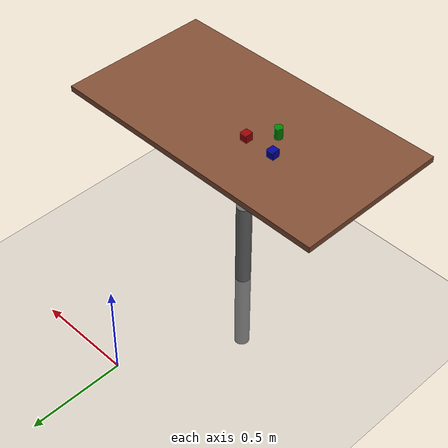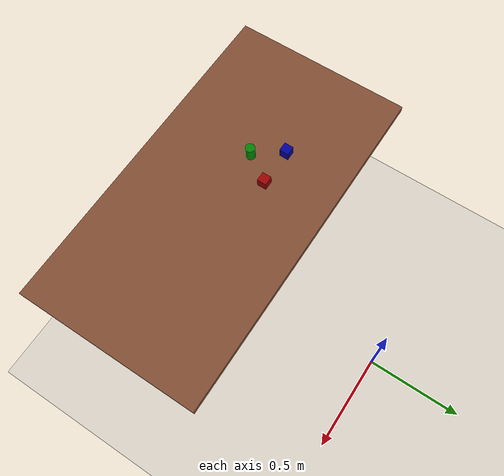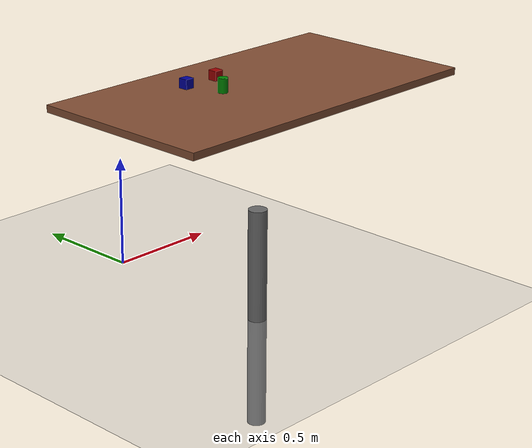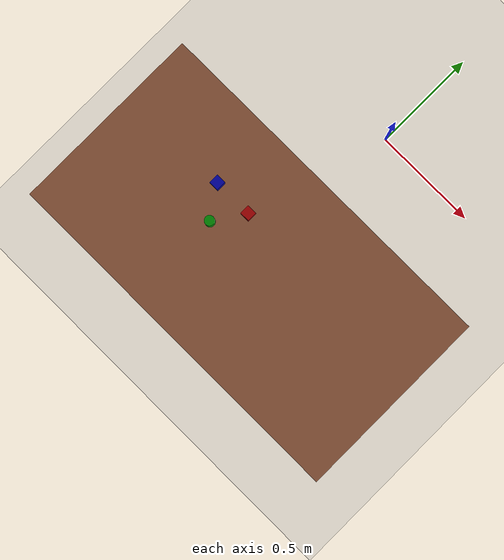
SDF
<?xml version='1.0' encoding='UTF-8'?>
<sdf version="1.6">
  <world name="default">

    <light type="directional" name="sun">
      <cast_shadows>true</cast_shadows>
      <pose>0 0 10 0 0 0</pose>
      <diffuse>0.8 0.8 0.8 1</diffuse>
      <specular>0.2 0.2 0.2 1</specular>
      <direction>-0.5 0.1 -0.9</direction>
    </light>

    <model name="ground_plane">
      <static>true</static>
      <link name="link">
        <collision name="collision">
          <geometry><plane><normal>0 0 1</normal><size>100 100</size></plane></geometry>
          <surface><friction><ode><mu>0.5</mu><mu2>0.5</mu2></ode></friction></surface>
        </collision>
        <visual name="visual">
          <geometry><plane><normal>0 0 1</normal><size>100 100</size></plane></geometry>
          <material><ambient>0.7 0.7 0.7 1</ambient><diffuse>0.7 0.7 0.7 1</diffuse></material>
        </visual>
      </link>
    </model>

    <model name="table">
      <static>true</static>
      <pose>0.0 -0.84 0 0 0 0</pose>
      <link name="table_top">
        <inertial><mass>50</mass><inertia><ixx>3</ixx><iyy>3</iyy><izz>3</izz><ixy>0</ixy><ixz>0</ixz><iyz>0</iyz></inertia></inertial>
        <collision name="table_top_collision">
          <geometry><box><size>1.5 0.8 0.03</size></box></geometry>
          <pose>0 0 1.0 0 0 0</pose>
          <surface><friction><ode><mu>0.6</mu><mu2>0.6</mu2></ode></friction></surface>
        </collision>
        <visual name="table_top_visual">
          <geometry><box><size>1.5 0.8 0.03</size></box></geometry>
          <pose>0 0 1.0 0 0 0</pose>
          <material><ambient>0.5 0.3 0.2 1</ambient><diffuse>0.5 0.3 0.2 1</diffuse></material>
        </visual>
      </link>
      <link name="leg1"><inertial><mass>2</mass><inertia><ixx>0.1</ixx><iyy>0.1</iyy><izz>0.01</izz><ixy>0</ixy><ixz>0</ixz><iyz>0</iyz></inertia></inertial>
        <collision name="leg1_collision"><geometry><cylinder><radius>0.04</radius><length>0.98</length></cylinder></geometry></collision>
        <visual name="leg1_visual"><geometry><cylinder><radius>0.04</radius><length>0.98</length></cylinder></geometry><material><ambient>0.4 0.4 0.4 1</ambient></material></visual></link>
      <joint name="leg1_joint" type="fixed"><parent>table_top</parent><child>leg1</child><pose>0.683 0.34 0.5 0 0 0</pose></joint>
      <link name="leg2"><inertial><mass>2</mass><inertia><ixx>0.1</ixx><iyy>0.1</iyy><izz>0.01</izz><ixy>0</ixy><ixz>0</ixz><iyz>0</iyz></inertia></inertial>
        <collision name="leg2_collision"><geometry><cylinder><radius>0.04</radius><length>0.98</length></cylinder></geometry></collision>
        <visual name="leg2_visual"><geometry><cylinder><radius>0.04</radius><length>0.98</length></cylinder></geometry><material><ambient>0.4 0.4 0.4 1</ambient></material></visual></link>
      <joint name="leg2_joint" type="fixed"><parent>table_top</parent><child>leg2</child><pose>-0.683 0.34 0.5 0 0 0</pose></joint>
      <link name="leg3"><inertial><mass>2</mass><inertia><ixx>0.1</ixx><iyy>0.1</iyy><izz>0.01</izz><ixy>0</ixy><ixz>0</ixz><iyz>0</iyz></inertia></inertial>
        <collision name="leg3_collision"><geometry><cylinder><radius>0.04</radius><length>0.98</length></cylinder></geometry></collision>
        <visual name="leg3_visual"><geometry><cylinder><radius>0.04</radius><length>0.98</length></cylinder></geometry><material><ambient>0.4 0.4 0.4 1</ambient></material></visual></link>
      <joint name="leg3_joint" type="fixed"><parent>table_top</parent><child>leg3</child><pose>-0.683 -0.34 0.5 0 0 0</pose></joint>
      <link name="leg4"><inertial><mass>2</mass><inertia><ixx>0.1</ixx><iyy>0.1</iyy><izz>0.01</izz><ixy>0</ixy><ixz>0</ixz><iyz>0</iyz></inertia></inertial>
        <collision name="leg4_collision"><geometry><cylinder><radius>0.04</radius><length>0.98</length></cylinder></geometry></collision>
        <visual name="leg4_visual"><geometry><cylinder><radius>0.04</radius><length>0.98</length></cylinder></geometry><material><ambient>0.4 0.4 0.4 1</ambient></material></visual></link>
      <joint name="leg4_joint" type="fixed"><parent>table_top</parent><child>leg4</child><pose>0.683 -0.34 0.5 0 0 0</pose></joint>
    </model>

    <model name="cube_blue">
      <static>false</static>
      <pose>-0.28 -0.72 1.06 0 0 0</pose>
      <link name="cube_body">
        <inertial><mass>0.1</mass><inertia><ixx>0.001</ixx><iyy>0.001</iyy><izz>0.001</izz><ixy>0</ixy><ixz>0</ixz><iyz>0</iyz></inertia></inertial>
        <collision name="cube_col"><geometry><box><size>0.04 0.04 0.04</size></box></geometry></collision>
        <visual name="cube_vis"><geometry><box><size>0.04 0.04 0.04</size></box></geometry>
          <material><ambient>0.0 0.0 0.6 1</ambient><diffuse>0.0 0.0 0.6 1</diffuse></material></visual>
      </link>
    </model>

    <model name="cube_red">
      <static>false</static>
      <pose>-0.12 -0.72 1.06 0 0 0</pose>
      <link name="cube_body">
        <inertial><mass>0.1</mass><inertia><ixx>0.001</ixx><iyy>0.001</iyy><izz>0.001</izz><ixy>0</ixy><ixz>0</ixz><iyz>0</iyz></inertia></inertial>
        <collision name="cube_col"><geometry><box><size>0.04 0.04 0.04</size></box></geometry></collision>
        <visual name="cube_vis"><geometry><box><size>0.04 0.04 0.04</size></box></geometry>
          <material><ambient>0.6 0.0 0.0 1</ambient><diffuse>0.6 0.0 0.0 1</diffuse></material></visual>
      </link>
    </model>

    <model name="cylinder_green">
      <static>false</static>
      <pose>-0.2 -0.84 1.06 0 0 0</pose>
      <link name="cylinder_body">
        <inertial><mass>0.15</mass><inertia><ixx>0.001</ixx><iyy>0.001</iyy><izz>0.001</izz><ixy>0</ixy><ixz>0</ixz><iyz>0</iyz></inertia></inertial>
        <collision name="cylinder_col"><geometry><cylinder><radius>0.02</radius><length>0.06</length></cylinder></geometry></collision>
        <visual name="cylinder_vis"><geometry><cylinder><radius>0.02</radius><length>0.06</length></cylinder></geometry>
          <material><ambient>0.0 0.5 0.0 1</ambient><diffuse>0.0 0.5 0.0 1</diffuse></material></visual>
      </link>
    </model>

    <physics type="dartsim">
      <max_step_size>0.001</max_step_size>
      <real_time_factor>1</real_time_factor>
      <gravity>0 0 -9.81</gravity>
    </physics>
  </world>
</sdf>
